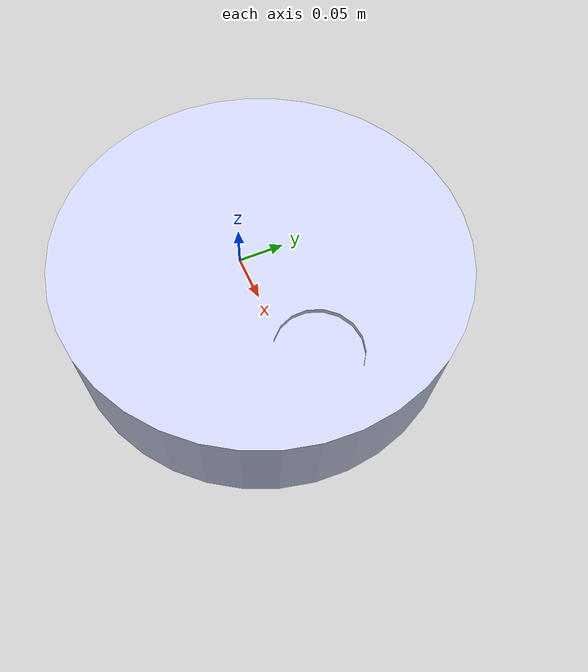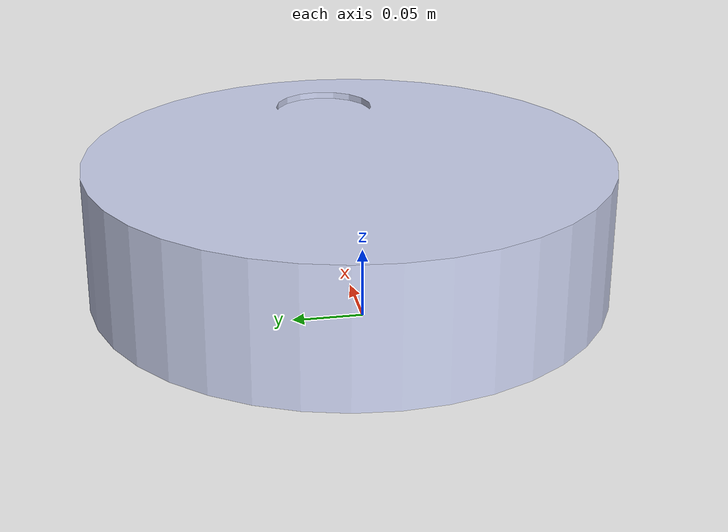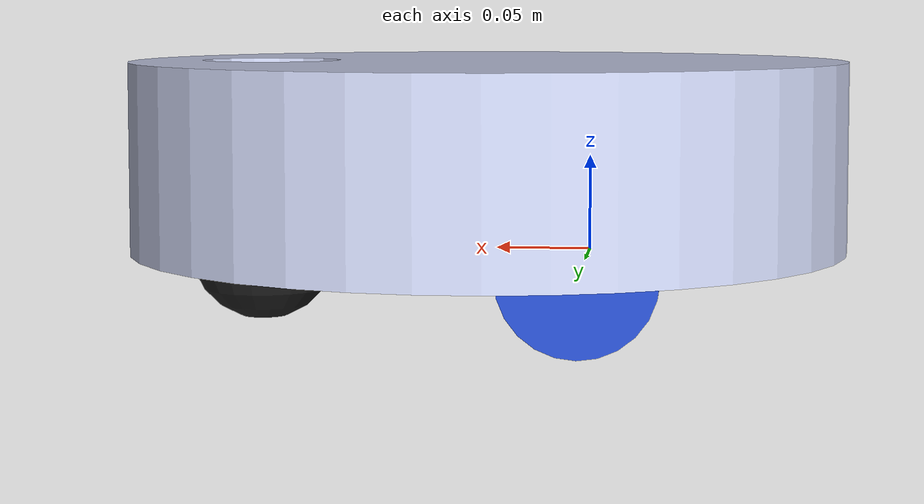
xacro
<?xml version="1.0"?>
<robot xmlns:xacro="http://www.ros.org/wiki/xacro">

    <xacro:include filename="inertial_macros.xacro" />

    <link name="base_link">
    </link>

    <joint name="base_footprint_joint" type="fixed">
        <parent link="base_link"/>
        <child link="base_footprint"/>
        <origin xyz="0 0 0" rpy="0 0 0"/>
    </joint>

    <link name="base_footprint">
    </link>

    <joint name="chassis_joint" type="fixed">
        <parent link="base_link"/>
        <child link="chassis"/>
        <origin xyz="0 0 0" rpy="0 0 0"/>
    </joint>

    <link name="chassis">
        <!-- mass= 10.9111229879667 -->
        <inertial>
            <origin xyz="0 0 0" rpy="0 0 0"/>
            <mass value="10.9111229879667"/>
            <inertia ixx="0.106836706468418" ixy="-2.056076220611E-19" ixz="0.000573171794696589" iyy="0.109646040415498" iyz="-8.5997885509867E-20" izz="0.198258682922409" />
        </inertial>

        <visual>
            <origin xyz="0 0 0" rpy="0 0 0" />
            <geometry>
                <mesh filename="file://$(find pico_bot)/meshes/chassis.STL" />
            </geometry>
            <material name="">
                <color rgba="0.792156862745098 0.819607843137255 0.933333333333333 1" />
            </material>
        </visual>

        <collision>
            <origin xyz="0 0 0" rpy="0 0 0" />
            <geometry>
                <mesh filename="file://$(find pico_bot)/meshes/chassis.STL" />
            </geometry>
        </collision>

    </link>

    <gazebo reference="chassis">
        <material>
            Gazebo/White
        </material>
    </gazebo>

    <joint name="left_wheel_joint" type="continuous">
        <parent link="base_link"/>
        <child link="left_wheel"/>
        <origin xyz="0 0.106 0" rpy="-${pi/2} 0 0"/>
        <axis xyz="0 0 1"/>
    </joint>

    <link name="left_wheel">

        <xacro:inertial_cylinder mass="0.1" length="0.035" radius="0.04">
            <origin xyz="0 0 0" rpy="0 0 0"/>
        </xacro:inertial_cylinder>

        <visual>
            <geometry>
                <cylinder length="0.035" radius="0.04"/>
            </geometry>
            <material name="blue"/>
        </visual>

        <collision>
            <geometry>
                <cylinder length="0.035" radius="0.04"/>
            </geometry>
        </collision>

    </link>

    <gazebo reference="left_wheel">
        <material>
            Gazebo/Blue
        </material>
    </gazebo>

    <joint name="right_wheel_joint" type="continuous">
        <parent link="base_link"/>
        <child link="right_wheel"/>
        <origin xyz="0 -0.106 0" rpy="${pi/2} 0 0"/>
        <axis xyz="0 0 -1"/>
    </joint>

    <link name="right_wheel">

        <xacro:inertial_cylinder mass="0.1" length="0.035" radius="0.04">
            <origin xyz="0 0 0" rpy="0 0 0"/>
        </xacro:inertial_cylinder>

        <visual>
            <geometry>
                <cylinder length="0.035" radius="0.04" />
            </geometry>
            <material name="blue"/>
        </visual>

        <collision>
            <geometry>
                <cylinder length="0.035" radius="0.04"/>
            </geometry>
        </collision>

    </link>

    <gazebo reference="right_wheel">
        <material>
            Gazebo/Blue
        </material>
    </gazebo>

    <joint name="caster_wheel_joint" type="fixed">
        <parent link="chassis"/>
        <child link="caster_wheel"/>
        <origin xyz="0.1765 0 0" rpy="0 0 0"/>
    </joint>

    <link name="caster_wheel">

        <xacro:inertial_sphere mass="0.5" radius="0.04"> <!-- Mass changed to 0.5 to fix tilting,, previous mass was 0.1-->
            <origin xyz="0 0 0" rpy="0 0 0"/>
        </xacro:inertial_sphere>

        <visual>
            <geometry>
                <sphere radius="0.04" />
            </geometry>
            <material name="black"/>
        </visual>

        <collision>
            <geometry>
                <sphere radius="0.04" />
            </geometry>
        </collision>
    </link>

    <gazebo reference="caster_wheel">
        <material>
            Gazebo/Black
        </material>
        <mu1 value="0.01"/>
        <mu2 value="0.01"/>
    </gazebo>

</robot>

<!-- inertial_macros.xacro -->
<robot xmlns:xacro="http://www.ros.org/wiki/xacro" >

    <!-- Specify some standard inertial calculations https://en.wikipedia.org/wiki/List_of_moments_of_inertia -->
    <!-- These make use of xacro's mathematical functionality -->

    <xacro:macro name="inertial_sphere" params="mass radius *origin">
        <inertial>
            <xacro:insert_block name="origin"/>
            <mass value="${mass}" />
            <inertia ixx="${(2/5) * mass * (radius*radius)}" ixy="0.0" ixz="0.0"
                    iyy="${(2/5) * mass * (radius*radius)}" iyz="0.0"
                    izz="${(2/5) * mass * (radius*radius)}" />
        </inertial>
    </xacro:macro>

    <xacro:macro name="inertial_box" params="mass ixx ixy ixz iyy iyz izz *origin">
        <inertial>
            <xacro:insert_block name="origin"/>
            <mass value="${mass}" />
            <inertia ixx="ixx" ixy="ixy" ixz="ixz"
                    iyy="iyy" iyz="iyz"
                    izz="izz" />
        </inertial>
    </xacro:macro>

    <xacro:macro name="inertial_cylinder" params="mass length radius *origin">
        <inertial>
            <xacro:insert_block name="origin"/>
            <mass value="${mass}" />
            <inertia ixx="${(1/12) * mass * (3*radius*radius + length*length)}" ixy="0.0" ixz="0.0"
                    iyy="${(1/12) * mass * (3*radius*radius + length*length)}" iyz="0.0"
                    izz="${(1/2) * mass * (radius*radius)}" />
        </inertial>
    </xacro:macro>

</robot>
